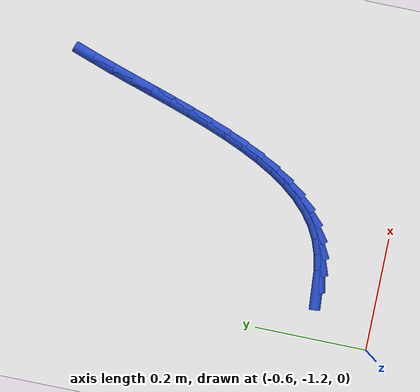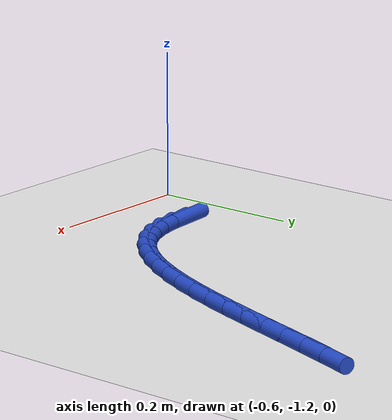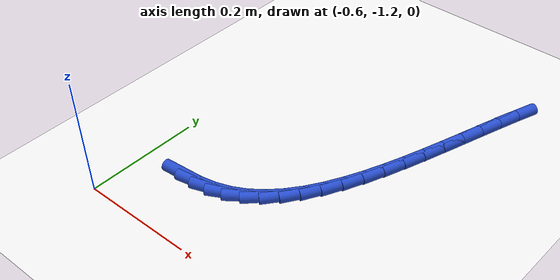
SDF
<sdf version="1.6">
 <world name="default">
  <model name="ground_plane">
   <static>1</static>
   <link name="link">
    <collision name="collision">
     <geometry><plane><normal>0 0 1</normal><size>100 100</size></plane></geometry>
     <surface><friction><ode><mu>100</mu><mu2>50</mu2></ode></friction></surface>
    </collision>
    <visual name="visual">
     <cast_shadows>0</cast_shadows>
     <geometry><plane><normal>0 0 1</normal><size>100 100</size></plane></geometry>
     <material>
      <script><uri>file://media/materials/scripts/gazebo.material</uri><name>Gazebo/WhiteGlow</name></script>
     </material>
    </visual>
   </link>
  </model>
  <model name="line">
   <link name="link_183">
    <pose>-0.5081314277817353 -1.0925472040202056 0.01 0 1.57 0.07815849492659936</pose>
    <collision name="collision">
     <geometry><cylinder><radius>0.01</radius><length>0.08</length></cylinder></geometry>
    </collision>
    <visual name="visual">
     <material>
      <script><name>Gazebo/Blue</name><uri>file://media/materials/scripts/gazebo.material</uri></script>
     </material>
     <geometry><cylinder><radius>0.01</radius><length>0.08</length></cylinder></geometry>
    </visual>
   </link>
   <link name="link_184">
    <pose>-0.4783048353290051 -1.0902112439080236 0.01 0 1.57 0.19629621445280535</pose>
    <collision name="collision">
     <geometry><cylinder><radius>0.01</radius><length>0.08</length></cylinder></geometry>
    </collision>
    <visual name="visual">
     <material>
      <script><name>Gazebo/Blue</name><uri>file://media/materials/scripts/gazebo.material</uri></script>
     </material>
     <geometry><cylinder><radius>0.01</radius><length>0.08</length></cylinder></geometry>
    </visual>
   </link>
   <link name="link_185">
    <pose>-0.4502014199417451 -1.0846226849551732 0.01 0 1.57 0.3376813935277376</pose>
    <collision name="collision">
     <geometry><cylinder><radius>0.01</radius><length>0.08</length></cylinder></geometry>
    </collision>
    <visual name="visual">
     <material>
      <script><name>Gazebo/Blue</name><uri>file://media/materials/scripts/gazebo.material</uri></script>
     </material>
     <geometry><cylinder><radius>0.01</radius><length>0.08</length></cylinder></geometry>
    </visual>
   </link>
   <link name="link_186">
    <pose>-0.42400201732133563 -1.0754232814282452 0.01 0 1.57 0.4974677831672718</pose>
    <collision name="collision">
     <geometry><cylinder><radius>0.01</radius><length>0.08</length></cylinder></geometry>
    </collision>
    <visual name="visual">
     <material>
      <script><name>Gazebo/Blue</name><uri>file://media/materials/scripts/gazebo.material</uri></script>
     </material>
     <geometry><cylinder><radius>0.01</radius><length>0.08</length></cylinder></geometry>
    </visual>
   </link>
   <link name="link_187">
    <pose>-0.39985740670830006 -1.0623122972562404 0.01 0 1.57 0.6513573150843044</pose>
    <collision name="collision">
     <geometry><cylinder><radius>0.01</radius><length>0.08</length></cylinder></geometry>
    </collision>
    <visual name="visual">
     <material>
      <script><name>Gazebo/Blue</name><uri>file://media/materials/scripts/gazebo.material</uri></script>
     </material>
     <geometry><cylinder><radius>0.01</radius><length>0.08</length></cylinder></geometry>
    </visual>
   </link>
   <link name="link_188">
    <pose>-0.3776948360393656 -1.0454166984146502 0.01 0 1.57 0.785557363940552</pose>
    <collision name="collision">
     <geometry><cylinder><radius>0.01</radius><length>0.08</length></cylinder></geometry>
    </collision>
    <visual name="visual">
     <material>
      <script><name>Gazebo/Blue</name><uri>file://media/materials/scripts/gazebo.material</uri></script>
     </material>
     <geometry><cylinder><radius>0.01</radius><length>0.08</length></cylinder></geometry>
    </visual>
   </link>
   <link name="link_189">
    <pose>-0.3573408172681027 -1.0250561978697452 0.01 0 1.57 0.8982477732949268</pose>
    <collision name="collision">
     <geometry><cylinder><radius>0.01</radius><length>0.08</length></cylinder></geometry>
    </collision>
    <visual name="visual">
     <material>
      <script><name>Gazebo/Blue</name><uri>file://media/materials/scripts/gazebo.material</uri></script>
     </material>
     <geometry><cylinder><radius>0.01</radius><length>0.08</length></cylinder></geometry>
    </visual>
   </link>
   <link name="link_190">
    <pose>-0.33862137530274933 -1.0015514404943426 0.01 0 1.57 0.9905486011601062</pose>
    <collision name="collision">
     <geometry><cylinder><radius>0.01</radius><length>0.08</length></cylinder></geometry>
    </collision>
    <visual name="visual">
     <material>
      <script><name>Gazebo/Blue</name><uri>file://media/materials/scripts/gazebo.material</uri></script>
     </material>
     <geometry><cylinder><radius>0.01</radius><length>0.08</length></cylinder></geometry>
    </visual>
   </link>
   <link name="link_191">
    <pose>-0.3213625350515446 -0.9752230711612617 0.01 0 1.57 1.0648964890041344</pose>
    <collision name="collision">
     <geometry><cylinder><radius>0.01</radius><length>0.08</length></cylinder></geometry>
    </collision>
    <visual name="visual">
     <material>
      <script><name>Gazebo/Blue</name><uri>file://media/materials/scripts/gazebo.material</uri></script>
     </material>
     <geometry><cylinder><radius>0.01</radius><length>0.08</length></cylinder></geometry>
    </visual>
   </link>
   <link name="link_192">
    <pose>-0.3053903214227261 -0.9463917347433188 0.01 0 1.57 1.1239839976265156</pose>
    <collision name="collision">
     <geometry><cylinder><radius>0.01</radius><length>0.08</length></cylinder></geometry>
    </collision>
    <visual name="visual">
     <material>
      <script><name>Gazebo/Blue</name><uri>file://media/materials/scripts/gazebo.material</uri></script>
     </material>
     <geometry><cylinder><radius>0.01</radius><length>0.08</length></cylinder></geometry>
    </visual>
   </link>
   <link name="link_193">
    <pose>-0.2905307593245323 -0.9153780761133323 0.01 0 1.57 1.1702437984794203</pose>
    <collision name="collision">
     <geometry><cylinder><radius>0.01</radius><length>0.08</length></cylinder></geometry>
    </collision>
    <visual name="visual">
     <material>
      <script><name>Gazebo/Blue</name><uri>file://media/materials/scripts/gazebo.material</uri></script>
     </material>
     <geometry><cylinder><radius>0.01</radius><length>0.08</length></cylinder></geometry>
    </visual>
   </link>
   <link name="link_194">
    <pose>-0.27660987366520123 -0.8825027401441193 0.01 0 1.57 1.2056713190337915</pose>
    <collision name="collision">
     <geometry><cylinder><radius>0.01</radius><length>0.08</length></cylinder></geometry>
    </collision>
    <visual name="visual">
     <material>
      <script><name>Gazebo/Blue</name><uri>file://media/materials/scripts/gazebo.material</uri></script>
     </material>
     <geometry><cylinder><radius>0.01</radius><length>0.08</length></cylinder></geometry>
    </visual>
   </link>
   <link name="link_195">
    <pose>-0.26345368935297103 -0.8480863717084972 0.01 0 1.57 1.2318086798012304</pose>
    <collision name="collision">
     <geometry><cylinder><radius>0.01</radius><length>0.08</length></cylinder></geometry>
    </collision>
    <visual name="visual">
     <material>
      <script><name>Gazebo/Blue</name><uri>file://media/materials/scripts/gazebo.material</uri></script>
     </material>
     <geometry><cylinder><radius>0.01</radius><length>0.08</length></cylinder></geometry>
    </visual>
   </link>
   <link name="link_196">
    <pose>-0.2508882312960804 -0.8124496156792849 0.01 0 1.57 1.2497880472603522</pose>
    <collision name="collision">
     <geometry><cylinder><radius>0.01</radius><length>0.08</length></cylinder></geometry>
    </collision>
    <visual name="visual">
     <material>
      <script><name>Gazebo/Blue</name><uri>file://media/materials/scripts/gazebo.material</uri></script>
     </material>
     <geometry><cylinder><radius>0.01</radius><length>0.08</length></cylinder></geometry>
    </visual>
   </link>
   <link name="link_197">
    <pose>-0.2387395244027673 -0.7759131169292995 0.01 0 1.57 1.260386245888818</pose>
    <collision name="collision">
     <geometry><cylinder><radius>0.01</radius><length>0.08</length></cylinder></geometry>
    </collision>
    <visual name="visual">
     <material>
      <script><name>Gazebo/Blue</name><uri>file://media/materials/scripts/gazebo.material</uri></script>
     </material>
     <geometry><cylinder><radius>0.01</radius><length>0.08</length></cylinder></geometry>
    </visual>
   </link>
   <link name="link_198">
    <pose>-0.22683359358127003 -0.7387975203313587 0.01 0 1.57 1.2640710282559429</pose>
    <collision name="collision">
     <geometry><cylinder><radius>0.01</radius><length>0.08</length></cylinder></geometry>
    </collision>
    <visual name="visual">
     <material>
      <script><name>Gazebo/Blue</name><uri>file://media/materials/scripts/gazebo.material</uri></script>
     </material>
     <geometry><cylinder><radius>0.01</radius><length>0.08</length></cylinder></geometry>
    </visual>
   </link>
   <link name="link_199">
    <pose>-0.21499646373982648 -0.7014234707582792 0.01 0 1.57 1.2610323735021538</pose>
    <collision name="collision">
     <geometry><cylinder><radius>0.01</radius><length>0.08</length></cylinder></geometry>
    </collision>
    <visual name="visual">
     <material>
      <script><name>Gazebo/Blue</name><uri>file://media/materials/scripts/gazebo.material</uri></script>
     </material>
     <geometry><cylinder><radius>0.01</radius><length>0.08</length></cylinder></geometry>
    </visual>
   </link>
   <link name="link_200">
    <pose>-0.20305415978667546 -0.6641116130828806 0.01 0 1.57 1.251197339098909</pose>
    <collision name="collision">
     <geometry><cylinder><radius>0.01</radius><length>0.08</length></cylinder></geometry>
    </collision>
    <visual name="visual">
     <material>
      <script><name>Gazebo/Blue</name><uri>file://media/materials/scripts/gazebo.material</uri></script>
     </material>
     <geometry><cylinder><radius>0.01</radius><length>0.08</length></cylinder></geometry>
    </visual>
   </link>
   <link name="link_201">
    <pose>-0.19083270663005492 -0.6271825921779794 0.01 0 1.57 1.234228765490716</pose>
    <collision name="collision">
     <geometry><cylinder><radius>0.01</radius><length>0.08</length></cylinder></geometry>
    </collision>
    <visual name="visual">
     <material>
      <script><name>Gazebo/Blue</name><uri>file://media/materials/scripts/gazebo.material</uri></script>
     </material>
     <geometry><cylinder><radius>0.01</radius><length>0.08</length></cylinder></geometry>
    </visual>
   </link>
  </model>
 </world>
</sdf>
